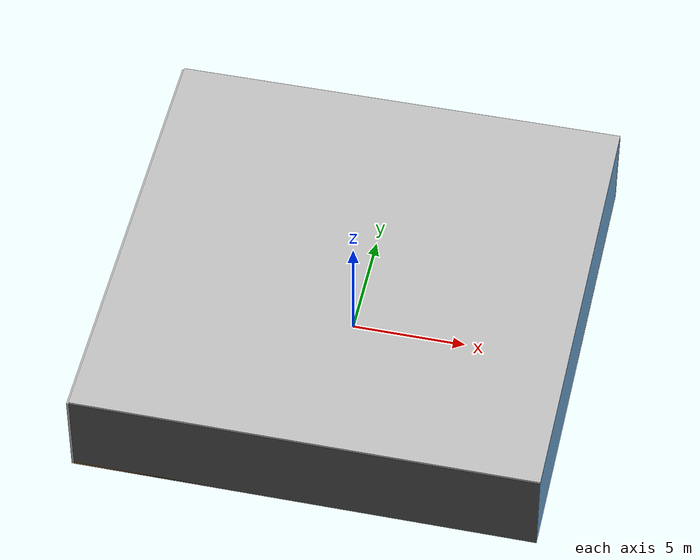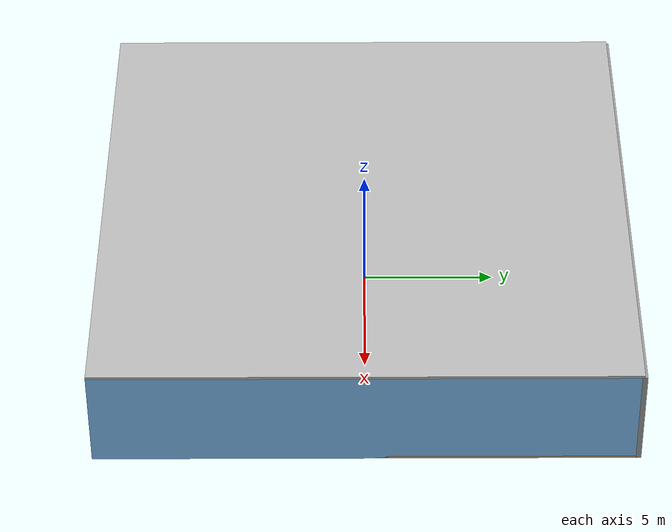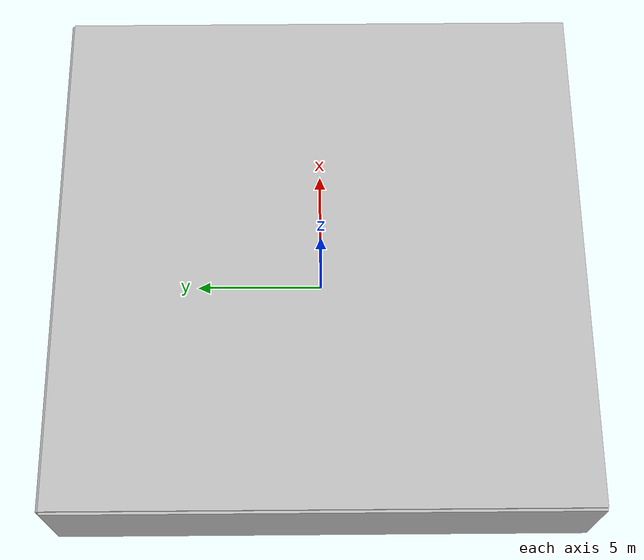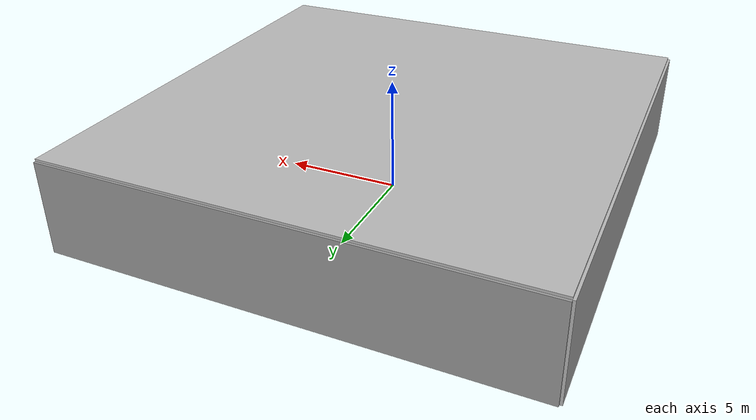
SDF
<sdf version="1.4">
 <world name="default">
  <physics type="ode">
   <max_step_size>0.001</max_step_size>
   <real_time_factor>1</real_time_factor>
   <real_time_update_rate>1000</real_time_update_rate>
   <gravity>0 0 -9.8</gravity>
  </physics>
  <scene><ambient>0.4 0.4 0.4 1</ambient><background>0.7 0.7 0.7 1</background><shadows>1</shadows></scene>
  <model name="Surrounding">
   <static>1</static>
   <link name="Ceiling">
    <collision name="Ceiling_Collision"><geometry><box><size>20 20 0.1</size></box></geometry></collision>
    <visual name="Ceiling_Visual">
     <geometry><box><size>20 20 0.1</size></box></geometry>
     <material>
      <script><uri>file://media/materials/scripts/gazebo.material</uri><name>Gazebo/PioneerBody</name></script>
     </material>
    </visual>
    <pose>0 0 4.05 0 0 0</pose>
   </link>
   <link name="Wall_South">
    <collision name="Wall_South_Collision">
     <geometry><box><size>20 0 4</size></box></geometry>
     <pose>0 0 2 0 -0 0</pose>
    </collision>
    <visual name="Wall_South_Visual">
     <pose>0 0 2 0 -0 0</pose>
     <geometry><box><size>20 0 4</size></box></geometry>
     <material>
      <script><uri>file://media/materials/scripts/gazebo.material</uri><name>Gazebo/Road</name></script>
     </material>
    </visual>
    <velocity_decay><linear>0</linear><angular>0</angular></velocity_decay>
    <pose>0 -10 0 0 -0 0</pose>
   </link>
   <link name="Wall_East">
    <collision name="Wall_21_Collision">
     <geometry><box><size>20 0 4</size></box></geometry>
     <pose>0 0 2 0 -0 0</pose>
    </collision>
    <visual name="Wall_21_Visual">
     <pose>0 0 2 0 -0 0</pose>
     <geometry><box><size>20 0 4</size></box></geometry>
     <material>
      <script><uri>file://media/materials/scripts/gazebo.material</uri><name>Gazebo/SkyBlue</name></script>
     </material>
    </visual>
    <velocity_decay><linear>0</linear><angular>0</angular></velocity_decay>
    <pose>10 0 0 0 -0 1.5708</pose>
   </link>
   <link name="Wall_North">
    <collision name="Wall_22_Collision">
     <geometry><box><size>20 0.2 4</size></box></geometry>
     <pose>0 0 2 0 -0 0</pose>
    </collision>
    <visual name="Wall_22_Visual">
     <pose>0 0 2 0 -0 0</pose>
     <geometry><box><size>20 0.2 4</size></box></geometry>
     <material>
      <script><uri>file://media/materials/scripts/gazebo.material</uri><name>Gazebo/Grey</name></script>
     </material>
    </visual>
    <velocity_decay><linear>0</linear><angular>0</angular></velocity_decay>
    <pose>0 10 0 0 -0 0</pose>
   </link>
   <link name="Wall_West">
    <collision name="Wall_23_Collision">
     <geometry><box><size>20 0.2 4</size></box></geometry>
     <pose>0 0 2 0 -0 0</pose>
    </collision>
    <visual name="Wall_23_Visual">
     <pose>0 0 2 0 -0 0</pose>
     <geometry><box><size>20 0.2 4</size></box></geometry>
     <material>
      <script><uri>file://media/materials/scripts/gazebo.material</uri><name>Gazebo/Pioneer2Body</name></script>
     </material>
    </visual>
    <velocity_decay><linear>0</linear><angular>0</angular></velocity_decay>
    <pose>-10 0 0 0 0 -1.5708</pose>
   </link>
   <link name="Ground_link">
    <collision name="collision">
     <pose>0 0 .05 0 -0 0</pose>
     <geometry><box><size>20 20 0.1</size></box></geometry>
    </collision>
    <visual name="visual">
     <pose>0 0 .05 0 -0 0</pose>
     <geometry><box><size>20 20 0.1</size></box></geometry>
     <material>
      <script>
       <uri>file://media/materials/scripts/gazebo.material</uri>
       <name>Gazebo/OrangeTransparent</name>
      </script>
     </material>
    </visual>
   </link>
   <static>1</static>
  </model>
  <spherical_coordinates>
   <surface_model>EARTH_WGS84</surface_model>
   <latitude_deg>0</latitude_deg>
   <longitude_deg>0</longitude_deg>
   <elevation>0</elevation>
   <heading_deg>0</heading_deg>
  </spherical_coordinates>
  <light name="lightball_0" type="diffuse">
   <diffuse>0.8 0.8 0.8 1</diffuse>
   <specular>0.2 0.2 0.2 1</specular>
   <attenuation>
    <range>100</range>
    <constant>0.7</constant>
    <linear>0.01</linear>
    <quadratic>0.001</quadratic>
   </attenuation>
   <direction>-0.5 0.1 -0.9</direction>
   <pose>7.9661386437 -3.98099301323 2.07084226182 0 0 0</pose>
  </light>
  <light name="lightball_1" type="diffuse">
   <diffuse>0.8 0.8 0.8 1</diffuse>
   <specular>0.2 0.2 0.2 1</specular>
   <attenuation>
    <range>100</range>
    <constant>0.7</constant>
    <linear>0.01</linear>
    <quadratic>0.001</quadratic>
   </attenuation>
   <direction>-0.5 0.1 -0.9</direction>
   <pose>-0.945510634685 9.08147576099 3.42732106528 0 0 0</pose>
  </light>
  <light name="lightball_2" type="diffuse">
   <diffuse>0.8 0.8 0.8 1</diffuse>
   <specular>0.2 0.2 0.2 1</specular>
   <attenuation>
    <range>100</range>
    <constant>0.7</constant>
    <linear>0.01</linear>
    <quadratic>0.001</quadratic>
   </attenuation>
   <direction>-0.5 0.1 -0.9</direction>
   <pose>9.72268960405 6.84621925002 1.96566037184 0 0 0</pose>
  </light>
  <light name="lightball_3" type="diffuse">
   <diffuse>0.8 0.8 0.8 1</diffuse>
   <specular>0.2 0.2 0.2 1</specular>
   <attenuation>
    <range>100</range>
    <constant>0.7</constant>
    <linear>0.01</linear>
    <quadratic>0.001</quadratic>
   </attenuation>
   <direction>-0.5 0.1 -0.9</direction>
   <pose>-1.64654405549 2.60252598847 3.2134150575 0 0 0</pose>
  </light>
  <light name="lightball_4" type="diffuse">
   <diffuse>0.8 0.8 0.8 1</diffuse>
   <specular>0.2 0.2 0.2 1</specular>
   <attenuation>
    <range>100</range>
    <constant>0.7</constant>
    <linear>0.01</linear>
    <quadratic>0.001</quadratic>
   </attenuation>
   <direction>-0.5 0.1 -0.9</direction>
   <pose>-3.65697792178 -3.17046130547 3.16506789606 0 0 0</pose>
  </light>
  <light name="lightball_5" type="diffuse">
   <diffuse>0.8 0.8 0.8 1</diffuse>
   <specular>0.2 0.2 0.2 1</specular>
   <attenuation>
    <range>100</range>
    <constant>0.7</constant>
    <linear>0.01</linear>
    <quadratic>0.001</quadratic>
   </attenuation>
   <direction>-0.5 0.1 -0.9</direction>
   <pose>6.15815779143 5.4178094535 1.36035267245 0 0 0</pose>
  </light>
  <light name="lightball_6" type="diffuse">
   <diffuse>0.8 0.8 0.8 1</diffuse>
   <specular>0.2 0.2 0.2 1</specular>
   <attenuation>
    <range>100</range>
    <constant>0.7</constant>
    <linear>0.01</linear>
    <quadratic>0.001</quadratic>
   </attenuation>
   <direction>-0.5 0.1 -0.9</direction>
   <pose>7.71441922599 -1.10709751487 0.827121340294 0 0 0</pose>
  </light>
  <light name="lightball_7" type="diffuse">
   <diffuse>0.8 0.8 0.8 1</diffuse>
   <specular>0.2 0.2 0.2 1</specular>
   <attenuation>
    <range>100</range>
    <constant>0.7</constant>
    <linear>0.01</linear>
    <quadratic>0.001</quadratic>
   </attenuation>
   <direction>-0.5 0.1 -0.9</direction>
   <pose>8.37620265443 4.05698412385 2.88967765706 0 0 0</pose>
  </light>
  <light name="lightball_8" type="diffuse">
   <diffuse>0.8 0.8 0.8 1</diffuse>
   <specular>0.2 0.2 0.2 1</specular>
   <attenuation>
    <range>100</range>
    <constant>0.7</constant>
    <linear>0.01</linear>
    <quadratic>0.001</quadratic>
   </attenuation>
   <direction>-0.5 0.1 -0.9</direction>
   <pose>2.86081317508 4.8877136727 3.75251232264 0 0 0</pose>
  </light>
  <light name="lightball_9" type="diffuse">
   <diffuse>0.8 0.8 0.8 1</diffuse>
   <specular>0.2 0.2 0.2 1</specular>
   <attenuation>
    <range>100</range>
    <constant>0.7</constant>
    <linear>0.01</linear>
    <quadratic>0.001</quadratic>
   </attenuation>
   <direction>-0.5 0.1 -0.9</direction>
   <pose>7.69319390259 -1.12920089522 1.0268467542 0 0 0</pose>
  </light>
  <include>
   <uri>model://textured_shapes</uri>
   <pose>-7.71826259064 1.31713603772 0 0 0 2.50504709529</pose>
  </include>
  <include>
   <uri>model://robocup_3Dsim_goal</uri>
   <pose>1.13439800295 1.13259038651 0 0 0 2.91971118495</pose>
  </include>
  <include>
   <uri>model://textured_shapes</uri>
   <pose>2.66705621935 7.16760354223 0 0 0 1.53073282791</pose>
  </include>
 </world>
</sdf>

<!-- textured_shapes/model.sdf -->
<sdf version="1.6">
  <model name="textured_shapes">
    <pose>0 0 0.5 0 0 0</pose>
    <link name="box">
      <pose>0 -1.5 0 0 0 0</pose>
      <collision name="collision">
        <geometry>
          <box>
            <size>1 1 1</size>
          </box>
        </geometry>
      </collision>
      <visual name="visual">
        <geometry>
          <box>
            <size>1 1 1</size>
          </box>
        </geometry>
        <material>
          <script>
            <uri>model://../model_source/models/textured_shapes/materials/scripts</uri>
            <uri>model://../model_source/models/textured_shapes/materials/textures</uri>
            <name>TexturedShape/Squares</name>
          </script>
        </material>
      </visual>
    </link>
    <link name="sphere">
      <collision name="collision">
        <geometry>
          <sphere>
            <radius>0.5</radius>
          </sphere>
        </geometry>
      </collision>
      <visual name="visual">
        <geometry>
          <sphere>
            <radius>0.5</radius>
          </sphere>
        </geometry>
        <material>
          <script>
            <uri>model://../model_source/models/textured_shapes/materials/scripts</uri>
            <uri>model://../model_source/models/textured_shapes/materials/textures</uri>
            <name>TexturedShape/Squares</name>
          </script>
        </material>
      </visual>
    </link>
    <link name="cylinder">
      <pose>0 1.5 0 0 0 0</pose>
      <collision name="collision">
        <geometry>
          <cylinder>
            <radius>0.5</radius>
            <length>1</length>
          </cylinder>
        </geometry>
      </collision>
      <visual name="visual">
        <geometry>
          <cylinder>
            <radius>0.5</radius>
            <length>1</length>
          </cylinder>
        </geometry>
        <material>
          <script>
            <uri>model://../model_source/models/textured_shapes/materials/scripts</uri>
            <uri>model://../model_source/models/textured_shapes/materials/textures</uri>
            <name>TexturedShape/Squares</name>
          </script>
        </material>
      </visual>
    </link>
  </model>
</sdf>

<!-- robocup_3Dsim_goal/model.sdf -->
<sdf version="1.5">
  <model name="robocup_3d_goal">
    <static>true</static>
    <link name="left_post">
      <pose>0 1.05 0.45 0 0 0</pose>
      <collision name="collision">
        <geometry>
          <cylinder>
            <radius>0.05</radius>
            <length>0.9</length>
          </cylinder>
        </geometry>
      </collision>
      <visual name="visual">
        <geometry>
          <cylinder>
            <radius>0.05</radius>
            <length>0.9</length>
          </cylinder>
        </geometry>
        <material>
          <script>
            <uri>file://media/materials/scripts/gazebo.material</uri>
            <name>Gazebo/ZincYellow</name>
          </script>
        </material>
      </visual>
    </link>
    <link name="left_support_horiz_lower">
      <pose>0.30 1.05 0.01 0 0 0</pose>
      <collision name="collision">
        <geometry>
          <box>
            <size>0.50 0.02 0.02</size>
          </box>
        </geometry>
      </collision>
      <visual name="visual">
        <geometry>
          <box>
            <size>0.50 0.02 0.02</size>
          </box>
        </geometry>
        <material>
          <script>
            <uri>file://media/materials/scripts/gazebo.material</uri>
            <name>Gazebo/White</name>
          </script>
        </material>
      </visual>
    </link>
    <link name="left_support_horiz_upper">
      <pose>0.30 1.05 0.79 0 0 0</pose>
      <collision name="collision">
        <geometry>
          <box>
            <size>0.50 0.02 0.02</size>
          </box>
        </geometry>
      </collision>
      <visual name="visual">
        <geometry>
          <box>
            <size>0.50 0.02 0.02</size>
          </box>
        </geometry>
        <material>
          <script>
            <uri>file://media/materials/scripts/gazebo.material</uri>
            <name>Gazebo/White</name>
          </script>
        </material>
      </visual>
    </link>
    <link name="left_support_vertical">
      <pose>0.56 1.05 0.4 0 1.5708 0</pose>
      <collision name="collision">
        <geometry>
          <box>
            <size>0.80 0.02 0.02</size>
          </box>
        </geometry>
      </collision>
      <visual name="visual">
        <geometry>
          <box>
            <size>0.80 0.02 0.02</size>
          </box>
        </geometry>
        <material>
          <script>
            <uri>file://media/materials/scripts/gazebo.material</uri>
            <name>Gazebo/White</name>
          </script>
        </material>
      </visual>
    </link>
    <link name="right_support_horiz_lower">
      <pose>0.30 -1.05 0.01 0 0 0</pose>
      <collision name="collision">
        <geometry>
          <box>
            <size>0.50 0.02 0.02</size>
          </box>
        </geometry>
      </collision>
      <visual name="visual">
        <geometry>
          <box>
            <size>0.50 0.02 0.02</size>
          </box>
        </geometry>
        <material>
          <script>
            <uri>file://media/materials/scripts/gazebo.material</uri>
            <name>Gazebo/White</name>
          </script>
        </material>
      </visual>
    </link>
    <link name="right_support_horiz_upper">
      <pose>0.30 -1.05 0.79 0 0 0</pose>
      <collision name="collision">
        <geometry>
          <box>
            <size>0.50 0.02 0.02</size>
          </box>
        </geometry>
      </collision>
      <visual name="visual">
        <geometry>
          <box>
            <size>0.50 0.02 0.02</size>
          </box>
        </geometry>
        <material>
          <script>
            <uri>file://media/materials/scripts/gazebo.material</uri>
            <name>Gazebo/White</name>
          </script>
        </material>
      </visual>
    </link>
    <link name="right_support_vertical">
      <pose>0.56 -1.05 0.4 0 1.5708 0</pose>
      <collision name="collision">
        <geometry>
          <box>
            <size>0.80 0.02 0.02</size>
          </box>
        </geometry>
      </collision>
      <visual name="visual">
        <geometry>
          <box>
            <size>0.80 0.02 0.02</size>
          </box>
        </geometry>
        <material>
          <script>
            <uri>file://media/materials/scripts/gazebo.material</uri>
            <name>Gazebo/White</name>
          </script>
        </material>
      </visual>
    </link>
    <link name="center_support_horiz_lower">
      <pose>0.56 0 0.01 0 1.5708 0</pose>
      <collision name="collision">
        <geometry>
          <box>
            <size>0.02 2.08 0.02</size>
          </box>
        </geometry>
      </collision>
      <visual name="visual">
        <geometry>
          <box>
            <size>0.02 2.08 0.02</size>
          </box>
        </geometry>
        <material>
          <script>
            <uri>file://media/materials/scripts/gazebo.material</uri>
            <name>Gazebo/White</name>
          </script>
        </material>
      </visual>
    </link>
    <link name="center_support_horiz_upper">
      <pose>0.56 0 0.79 0 1.5708 0</pose>
      <collision name="collision">
        <geometry>
          <box>
            <size>0.02 2.08 0.02</size>
          </box>
        </geometry>
      </collision>
      <visual name="visual">
        <geometry>
          <box>
            <size>0.02 2.08 0.02</size>
          </box>
        </geometry>
        <material>
          <script>
            <uri>file://media/materials/scripts/gazebo.material</uri>
            <name>Gazebo/White</name>
          </script>
        </material>
      </visual>
    </link>
    <link name="right_post">
      <pose>0 -1.05 0.45 0 0 0</pose>
      <collision name="collision">
        <geometry>
          <cylinder>
            <radius>0.05</radius>
            <length>0.9</length>
          </cylinder>
        </geometry>
      </collision>
      <visual name="visual">
        <geometry>
          <cylinder>
            <radius>0.05</radius>
            <length>0.9</length>
          </cylinder>
        </geometry>
        <material>
          <script>
            <uri>file://media/materials/scripts/gazebo.material</uri>
            <name>Gazebo/ZincYellow</name>
          </script>
        </material>
      </visual>
    </link>
    <link name="crossbar">
      <pose>0 0 0.85 1.57 1.57 0</pose>
      <collision name="collision">
        <geometry>
          <cylinder>
            <radius>0.05</radius>
            <length>2.0</length>
          </cylinder>
        </geometry>
      </collision>
      <visual name="visual">
        <geometry>
          <cylinder>
            <radius>0.05</radius>
            <length>2.0</length>
          </cylinder>
        </geometry>
        <material>
          <script>
            <uri>file://media/materials/scripts/gazebo.material</uri>
            <name>Gazebo/ZincYellow</name>
          </script>
        </material>
      </visual>
    </link>
    <link name="center_net">
      <pose>0.56 0 0.40 0 0 0</pose>
      <collision name="collision">
        <geometry>
          <box>
            <size>0.01 2.1 0.80</size>
          </box>
        </geometry>
      </collision>
      <visual name="visual">
        <geometry>
          <box>
            <size>0.01 2.1 0.80</size>
          </box>
        </geometry>
        <material>
          <script>
            <uri>model://../model_source/models/robocup09_spl_field/materials/scripts/</uri>
            <uri>model://../model_source/models/robocup09_spl_field/materials/textures/</uri>
            <name>RoboCup/Net</name>
          </script>
        </material>
      </visual>
    </link>
    <link name="left_net">
      <pose>0.30 1.05 0.40 0 0 0</pose>
      <collision name="collision">
        <geometry>
          <box>
            <size>0.50 0.01 0.76</size>
          </box>
        </geometry>
      </collision>
      <visual name="visual">
        <geometry>
          <box>
            <size>0.50 0.01 0.76</size>
          </box>
        </geometry>
        <material>
          <script>
            <uri>model://../model_source/models/robocup09_spl_field/materials/scripts/</uri>
            <uri>model://../model_source/models/robocup09_spl_field/materials/textures/</uri>
            <name>RoboCup/Net</name>
          </script>
        </material>
      </visual>
    </link>
    <link name="right_net">
      <pose>0.30 -1.05 0.40 0 0 0</pose>
      <collision name="collision">
        <geometry>
          <box>
            <size>0.50 0.01 0.76</size>
          </box>
        </geometry>
      </collision>
      <visual name="visual">
        <geometry>
          <box>
            <size>0.50 0.01 0.76</size>
          </box>
        </geometry>
        <material>
          <script>
            <uri>model://../model_source/models/robocup09_spl_field/materials/scripts/</uri>
            <uri>model://../model_source/models/robocup09_spl_field/materials/textures/</uri>
            <name>RoboCup/Net</name>
          </script>
        </material>
      </visual>
    </link>
  </model>
</sdf>
